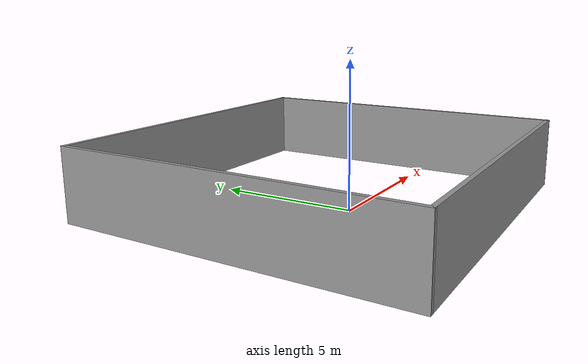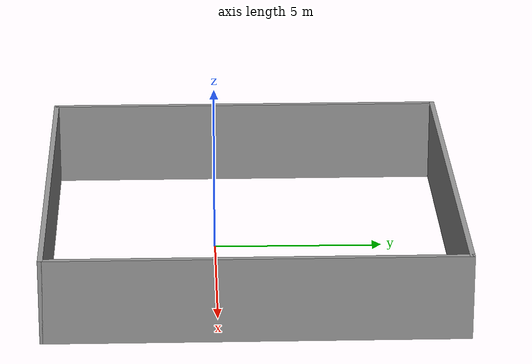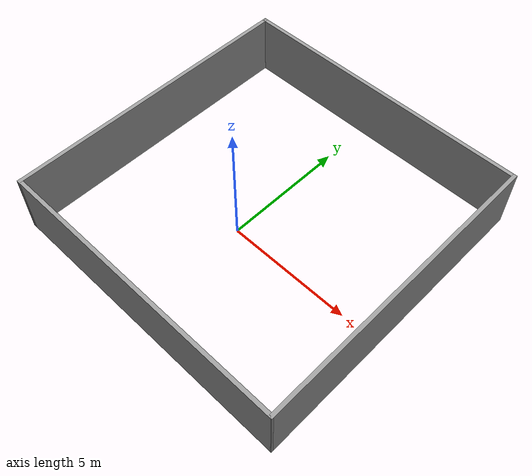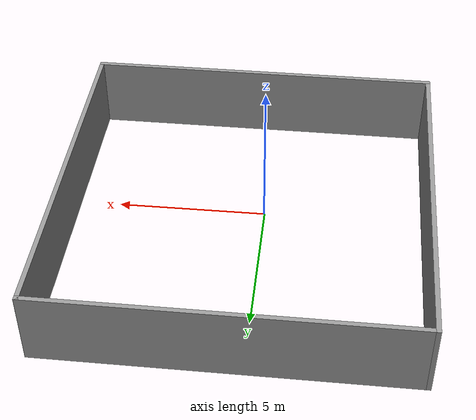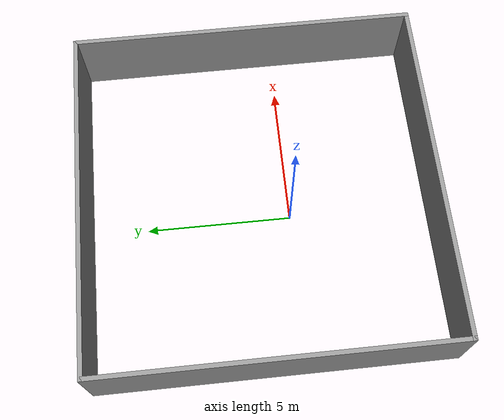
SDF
<?xml version='1.0'?>
<sdf version='1.7'>
  <model name='serve_wall'>
    <pose>0.515037 1.04448 0 0 -0 0</pose>
    <link name='Wall_19'>
      <collision name='Wall_19_Collision'>
        <geometry>
          <box>
            <size>12 0.15 2.5</size>
          </box>
        </geometry>
        <pose>0 0 1.25 0 -0 0</pose>
      </collision>
      <visual name='Wall_19_Visual'>
        <pose>0 0 1.25 0 -0 0</pose>
        <geometry>
          <box>
            <size>12 0.15 2.5</size>
          </box>
        </geometry>
        <material>
          <script>
            <uri>file://media/materials/scripts/gazebo.material</uri>
            <name>Gazebo/Grey</name>
          </script>
          <ambient>1 1 1 1</ambient>
        </material>
        <meta>
          <layer>0</layer>
        </meta>
      </visual>
      <pose>-5.92504 -0.000477 0 0 -0 -1.5708</pose>
    </link>
    <link name='Wall_20'>
      <collision name='Wall_20_Collision'>
        <geometry>
          <box>
            <size>12 0.15 2.5</size>
          </box>
        </geometry>
        <pose>0 0 1.25 0 -0 0</pose>
      </collision>
      <visual name='Wall_20_Visual'>
        <pose>0 0 1.25 0 -0 0</pose>
        <geometry>
          <box>
            <size>12 0.15 2.5</size>
          </box>
        </geometry>
        <material>
          <script>
            <uri>file://media/materials/scripts/gazebo.material</uri>
            <name>Gazebo/Grey</name>
          </script>
          <ambient>1 1 1 1</ambient>
        </material>
        <meta>
          <layer>0</layer>
        </meta>
      </visual>
      <pose>-3.7e-05 -5.925 0 0 -0 8e-05</pose>
    </link>
    <link name='Wall_21'>
      <collision name='Wall_21_Collision'>
        <geometry>
          <box>
            <size>12 0.15 2.5</size>
          </box>
        </geometry>
        <pose>0 0 1.25 0 -0 0</pose>
      </collision>
      <visual name='Wall_21_Visual'>
        <pose>0 0 1.25 0 -0 0</pose>
        <geometry>
          <box>
            <size>12 0.15 2.5</size>
          </box>
        </geometry>
        <material>
          <script>
            <uri>file://media/materials/scripts/gazebo.material</uri>
            <name>Gazebo/Grey</name>
          </script>
          <ambient>1 1 1 1</ambient>
        </material>
        <meta>
          <layer>0</layer>
        </meta>
      </visual>
      <pose>5.925 0.000477 0 0 -0 1.57079</pose>
    </link>
    <link name='Wall_22'>
      <collision name='Wall_22_Collision'>
        <geometry>
          <box>
            <size>12 0.15 2.5</size>
          </box>
        </geometry>
        <pose>0 0 1.25 0 -0 0</pose>
      </collision>
      <visual name='Wall_22_Visual'>
        <pose>0 0 1.25 0 -0 0</pose>
        <geometry>
          <box>
            <size>12 0.15 2.5</size>
          </box>
        </geometry>
        <material>
          <script>
            <uri>file://media/materials/scripts/gazebo.material</uri>
            <name>Gazebo/Grey</name>
          </script>
          <ambient>1 1 1 1</ambient>
        </material>
        <meta>
          <layer>0</layer>
        </meta>
      </visual>
      <pose>3e-06 5.925 0 0 -0 -3.14151</pose>
    </link>
    <static>1</static>
  </model>
</sdf>
